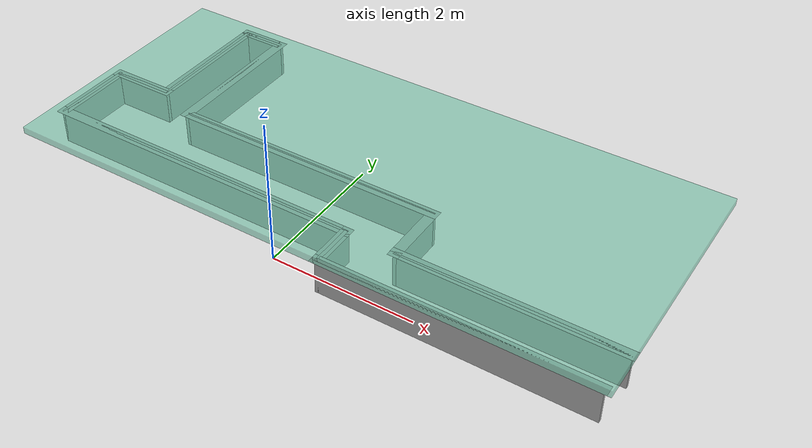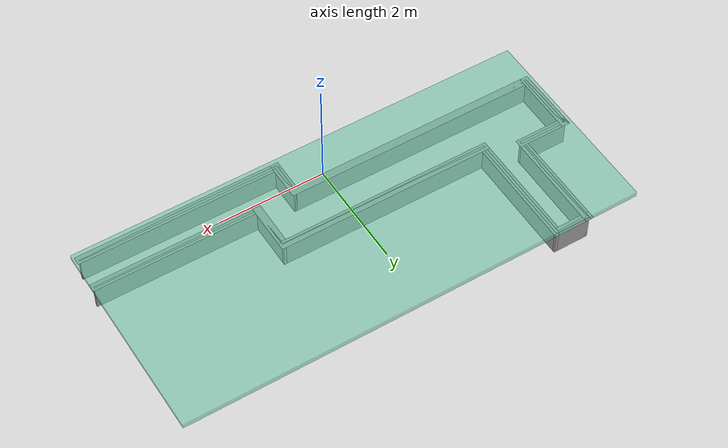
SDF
<?xml version='1.0'?>
<sdf version='1.7'>
  <model name='TubeWorld2'>
    <pose>0.316 1.602 0 0 -0 0</pose>
    <link name='Floor_1'>
      <collision name='Floor_1_Collision'>
        <geometry>
          <box>
            <size>8.4 3.7 0.1</size>
          </box>
        </geometry>
        <pose>0 0 0.05 0 -0 0</pose>
      </collision>
      <visual name='Floor_1_Visual'>
        <pose>0 0 0.05 0 -0 0</pose>
        <transparency>0.4</transparency>
        <geometry>
          <box>
            <size>8.4 3.7 0.1</size>
          </box>
        </geometry>
        <material>
          <script>
            <uri>file://media/materials/scripts/gazebo.material</uri>
            <name>Gazebo/Grey</name>
          </script>
          <ambient>0.435294 0.796078 0.67451 1</ambient>
        </material>
        <meta>
          <layer>1</layer>
        </meta>
      </visual>
      <pose>0 -0 0.5 0 -0 0</pose>
    </link>
    <link name='Wall_0'>
      <collision name='Wall_0_Collision'>
        <geometry>
          <box>
            <size>3 0.05 0.5</size>
          </box>
        </geometry>
        <pose>0 0 0.25 0 -0 0</pose>
      </collision>
      <visual name='Wall_0_Visual'>
        <pose>0 0 0.25 0 -0 0</pose>
        <geometry>
          <box>
            <size>3 0.05 0.5</size>
          </box>
        </geometry>
        <material>
          <script>
            <uri>file://media/materials/scripts/gazebo.material</uri>
            <name>Gazebo/Grey</name>
          </script>
          <ambient>1 1 1 1</ambient>
        </material>
        <meta>
          <layer>0</layer>
        </meta>
      </visual>
      <pose>2.65 -1.175 0 0 -0 3.14159</pose>
    </link>
    <link name='Wall_10'>
      <collision name='Wall_10_Collision'>
        <geometry>
          <box>
            <size>0.9 0.05 0.5</size>
          </box>
        </geometry>
        <pose>0 0 0.25 0 -0 0</pose>
      </collision>
      <visual name='Wall_10_Visual'>
        <pose>0 0 0.25 0 -0 0</pose>
        <geometry>
          <box>
            <size>0.9 0.05 0.5</size>
          </box>
        </geometry>
        <material>
          <script>
            <uri>file://media/materials/scripts/gazebo.material</uri>
            <name>Gazebo/Grey</name>
          </script>
          <ambient>1 1 1 1</ambient>
        </material>
        <meta>
          <layer>0</layer>
        </meta>
      </visual>
      <pose>-3.7 -0.075 0 0 -0 3.14159</pose>
    </link>
    <link name='Wall_11'>
      <collision name='Wall_11_Collision'>
        <geometry>
          <box>
            <size>1.15 0.05 0.5</size>
          </box>
        </geometry>
        <pose>0 0 0.25 0 -0 0</pose>
      </collision>
      <visual name='Wall_11_Visual'>
        <pose>0 0 0.25 0 -0 0</pose>
        <geometry>
          <box>
            <size>1.15 0.05 0.5</size>
          </box>
        </geometry>
        <material>
          <script>
            <uri>file://media/materials/scripts/gazebo.material</uri>
            <name>Gazebo/Grey</name>
          </script>
          <ambient>1 1 1 1</ambient>
        </material>
        <meta>
          <layer>0</layer>
        </meta>
      </visual>
      <pose>-4.125 -0.625 0 0 -0 -1.5708</pose>
    </link>
    <link name='Wall_12'>
      <collision name='Wall_12_Collision'>
        <geometry>
          <box>
            <size>4.65 0.05 0.5</size>
          </box>
        </geometry>
        <pose>0 0 0.25 0 -0 0</pose>
      </collision>
      <visual name='Wall_12_Visual'>
        <pose>0 0 0.25 0 -0 0</pose>
        <geometry>
          <box>
            <size>4.65 0.05 0.5</size>
          </box>
        </geometry>
        <material>
          <script>
            <uri>file://media/materials/scripts/gazebo.material</uri>
            <name>Gazebo/Grey</name>
          </script>
          <ambient>1 1 1 1</ambient>
        </material>
        <meta>
          <layer>0</layer>
        </meta>
      </visual>
      <pose>-1.825 -1.175 0 0 -0 0</pose>
    </link>
    <link name='Wall_13'>
      <collision name='Wall_13_Collision'>
        <geometry>
          <box>
            <size>0.65 0.05 0.5</size>
          </box>
        </geometry>
        <pose>0 0 0.25 0 -0 0</pose>
      </collision>
      <visual name='Wall_13_Visual'>
        <pose>0 0 0.25 0 -0 0</pose>
        <geometry>
          <box>
            <size>0.65 0.05 0.5</size>
          </box>
        </geometry>
        <material>
          <script>
            <uri>file://media/materials/scripts/gazebo.material</uri>
            <name>Gazebo/Grey</name>
          </script>
          <ambient>1 1 1 1</ambient>
        </material>
        <meta>
          <layer>0</layer>
        </meta>
      </visual>
      <pose>0.475 -1.475 0 0 -0 -1.5708</pose>
    </link>
    <link name='Wall_14'>
      <collision name='Wall_14_Collision'>
        <geometry>
          <box>
            <size>3.65 0.05 0.5</size>
          </box>
        </geometry>
        <pose>0 0 0.25 0 -0 0</pose>
      </collision>
      <visual name='Wall_14_Visual'>
        <pose>0 0 0.25 0 -0 0</pose>
        <geometry>
          <box>
            <size>3.65 0.05 0.5</size>
          </box>
        </geometry>
        <material>
          <script>
            <uri>file://media/materials/scripts/gazebo.material</uri>
            <name>Gazebo/Grey</name>
          </script>
          <ambient>1 1 1 1</ambient>
        </material>
        <meta>
          <layer>0</layer>
        </meta>
      </visual>
      <pose>2.275 -1.775 0 0 -0 0</pose>
    </link>
    <link name='Wall_27'>
      <collision name='Wall_27_Collision'>
        <geometry>
          <box>
            <size>3.1 0.15 0</size>
          </box>
        </geometry>
        <pose>0 0 0 0 -0 0</pose>
      </collision>
      <visual name='Wall_27_Visual'>
        <pose>0 0 0 0 -0 0</pose>
        <geometry>
          <box>
            <size>3.1 0.15 0</size>
          </box>
        </geometry>
        <material>
          <script>
            <uri>file://media/materials/scripts/gazebo.material</uri>
            <name>Gazebo/Grey</name>
          </script>
          <ambient>1 1 1 1</ambient>
        </material>
        <meta>
          <layer>1</layer>
        </meta>
      </visual>
      <pose>2.65 -1.175 0.5 0 -0 3.14159</pose>
    </link>
    <link name='Wall_28'>
      <collision name='Wall_28_Collision'>
        <geometry>
          <box>
            <size>1 0.15 0</size>
          </box>
        </geometry>
        <pose>0 0 0 0 -0 0</pose>
      </collision>
      <visual name='Wall_28_Visual'>
        <pose>0 0 0 0 -0 0</pose>
        <geometry>
          <box>
            <size>1 0.15 0</size>
          </box>
        </geometry>
        <material>
          <script>
            <uri>file://media/materials/scripts/gazebo.material</uri>
            <name>Gazebo/Grey</name>
          </script>
          <ambient>1 1 1 1</ambient>
        </material>
        <meta>
          <layer>1</layer>
        </meta>
      </visual>
      <pose>1.175 -0.75 0.5 0 -0 1.5708</pose>
    </link>
    <link name='Wall_29'>
      <collision name='Wall_29_Collision'>
        <geometry>
          <box>
            <size>4 0.15 0</size>
          </box>
        </geometry>
        <pose>0 0 0 0 -0 0</pose>
      </collision>
      <visual name='Wall_29_Visual'>
        <pose>0 0 0 0 -0 0</pose>
        <geometry>
          <box>
            <size>4 0.15 0</size>
          </box>
        </geometry>
        <material>
          <script>
            <uri>file://media/materials/scripts/gazebo.material</uri>
            <name>Gazebo/Grey</name>
          </script>
          <ambient>1 1 1 1</ambient>
        </material>
        <meta>
          <layer>1</layer>
        </meta>
      </visual>
      <pose>-0.75 -0.325 0.5 0 -0 3.14159</pose>
    </link>
    <link name='Wall_30'>
      <collision name='Wall_30_Collision'>
        <geometry>
          <box>
            <size>2.25 0.15 0</size>
          </box>
        </geometry>
        <pose>0 0 0 0 -0 0</pose>
      </collision>
      <visual name='Wall_30_Visual'>
        <pose>0 0 0 0 -0 0</pose>
        <geometry>
          <box>
            <size>2.25 0.15 0</size>
          </box>
        </geometry>
        <material>
          <script>
            <uri>file://media/materials/scripts/gazebo.material</uri>
            <name>Gazebo/Grey</name>
          </script>
          <ambient>1 1 1 1</ambient>
        </material>
        <meta>
          <layer>1</layer>
        </meta>
      </visual>
      <pose>-2.675 0.725 0.5 0 -0 1.5708</pose>
    </link>
    <link name='Wall_31'>
      <collision name='Wall_31_Collision'>
        <geometry>
          <box>
            <size>0.75 0.15 0</size>
          </box>
        </geometry>
        <pose>0 0 0 0 -0 0</pose>
      </collision>
      <visual name='Wall_31_Visual'>
        <pose>0 0 0 0 -0 0</pose>
        <geometry>
          <box>
            <size>0.75 0.15 0</size>
          </box>
        </geometry>
        <material>
          <script>
            <uri>file://media/materials/scripts/gazebo.material</uri>
            <name>Gazebo/Grey</name>
          </script>
          <ambient>1 1 1 1</ambient>
        </material>
        <meta>
          <layer>1</layer>
        </meta>
      </visual>
      <pose>-2.975 1.775 0.5 0 -0 3.14159</pose>
    </link>
    <link name='Wall_32'>
      <collision name='Wall_32_Collision'>
        <geometry>
          <box>
            <size>2 0.15 0</size>
          </box>
        </geometry>
        <pose>0 0 0 0 -0 0</pose>
      </collision>
      <visual name='Wall_32_Visual'>
        <pose>0 0 0 0 -0 0</pose>
        <geometry>
          <box>
            <size>2 0.15 0</size>
          </box>
        </geometry>
        <material>
          <script>
            <uri>file://media/materials/scripts/gazebo.material</uri>
            <name>Gazebo/Grey</name>
          </script>
          <ambient>1 1 1 1</ambient>
        </material>
        <meta>
          <layer>1</layer>
        </meta>
      </visual>
      <pose>-3.275 0.85 0.5 0 -0 -1.5708</pose>
    </link>
    <link name='Wall_33'>
      <collision name='Wall_33_Collision'>
        <geometry>
          <box>
            <size>1 0.15 0</size>
          </box>
        </geometry>
        <pose>0 0 0 0 -0 0</pose>
      </collision>
      <visual name='Wall_33_Visual'>
        <pose>0 0 0 0 -0 0</pose>
        <geometry>
          <box>
            <size>1 0.15 0</size>
          </box>
        </geometry>
        <material>
          <script>
            <uri>file://media/materials/scripts/gazebo.material</uri>
            <name>Gazebo/Grey</name>
          </script>
          <ambient>1 1 1 1</ambient>
        </material>
        <meta>
          <layer>1</layer>
        </meta>
      </visual>
      <pose>-3.7 -0.075 0.5 0 -0 3.14159</pose>
    </link>
    <link name='Wall_34'>
      <collision name='Wall_34_Collision'>
        <geometry>
          <box>
            <size>1.25 0.15 0</size>
          </box>
        </geometry>
        <pose>0 0 0 0 -0 0</pose>
      </collision>
      <visual name='Wall_34_Visual'>
        <pose>0 0 0 0 -0 0</pose>
        <geometry>
          <box>
            <size>1.25 0.15 0</size>
          </box>
        </geometry>
        <material>
          <script>
            <uri>file://media/materials/scripts/gazebo.material</uri>
            <name>Gazebo/Grey</name>
          </script>
          <ambient>1 1 1 1</ambient>
        </material>
        <meta>
          <layer>1</layer>
        </meta>
      </visual>
      <pose>-4.125 -0.625 0.5 0 -0 -1.5708</pose>
    </link>
    <link name='Wall_35'>
      <collision name='Wall_35_Collision'>
        <geometry>
          <box>
            <size>4.75 0.15 0</size>
          </box>
        </geometry>
        <pose>0 0 0 0 -0 0</pose>
      </collision>
      <visual name='Wall_35_Visual'>
        <pose>0 0 0 0 -0 0</pose>
        <geometry>
          <box>
            <size>4.75 0.15 0</size>
          </box>
        </geometry>
        <material>
          <script>
            <uri>file://media/materials/scripts/gazebo.material</uri>
            <name>Gazebo/Grey</name>
          </script>
          <ambient>1 1 1 1</ambient>
        </material>
        <meta>
          <layer>1</layer>
        </meta>
      </visual>
      <pose>-1.825 -1.175 0.5 0 -0 0</pose>
    </link>
    <link name='Wall_36'>
      <collision name='Wall_36_Collision'>
        <geometry>
          <box>
            <size>0.75 0.15 0</size>
          </box>
        </geometry>
        <pose>0 0 0 0 -0 0</pose>
      </collision>
      <visual name='Wall_36_Visual'>
        <pose>0 0 0 0 -0 0</pose>
        <geometry>
          <box>
            <size>0.75 0.15 0</size>
          </box>
        </geometry>
        <material>
          <script>
            <uri>file://media/materials/scripts/gazebo.material</uri>
            <name>Gazebo/Grey</name>
          </script>
          <ambient>1 1 1 1</ambient>
        </material>
        <meta>
          <layer>1</layer>
        </meta>
      </visual>
      <pose>0.475 -1.475 0.5 0 -0 -1.5708</pose>
    </link>
    <link name='Wall_37'>
      <collision name='Wall_37_Collision'>
        <geometry>
          <box>
            <size>3.75 0.15 0</size>
          </box>
        </geometry>
        <pose>0 0 0 0 -0 0</pose>
      </collision>
      <visual name='Wall_37_Visual'>
        <pose>0 0 0 0 -0 0</pose>
        <geometry>
          <box>
            <size>3.75 0.15 0</size>
          </box>
        </geometry>
        <material>
          <script>
            <uri>file://media/materials/scripts/gazebo.material</uri>
            <name>Gazebo/Grey</name>
          </script>
          <ambient>1 1 1 1</ambient>
        </material>
        <meta>
          <layer>1</layer>
        </meta>
      </visual>
      <pose>2.275 -1.775 0.5 0 -0 0</pose>
    </link>
    <link name='Wall_5'>
      <collision name='Wall_5_Collision'>
        <geometry>
          <box>
            <size>0.9 0.05 0.5</size>
          </box>
        </geometry>
        <pose>0 0 0.25 0 -0 0</pose>
      </collision>
      <visual name='Wall_5_Visual'>
        <pose>0 0 0.25 0 -0 0</pose>
        <geometry>
          <box>
            <size>0.9 0.05 0.5</size>
          </box>
        </geometry>
        <material>
          <script>
            <uri>file://media/materials/scripts/gazebo.material</uri>
            <name>Gazebo/Grey</name>
          </script>
          <ambient>1 1 1 1</ambient>
        </material>
        <meta>
          <layer>0</layer>
        </meta>
      </visual>
      <pose>1.175 -0.75 0 0 -0 1.5708</pose>
    </link>
    <link name='Wall_6'>
      <collision name='Wall_6_Collision'>
        <geometry>
          <box>
            <size>3.9 0.05 0.5</size>
          </box>
        </geometry>
        <pose>0 0 0.25 0 -0 0</pose>
      </collision>
      <visual name='Wall_6_Visual'>
        <pose>0 0 0.25 0 -0 0</pose>
        <geometry>
          <box>
            <size>3.9 0.05 0.5</size>
          </box>
        </geometry>
        <material>
          <script>
            <uri>file://media/materials/scripts/gazebo.material</uri>
            <name>Gazebo/Grey</name>
          </script>
          <ambient>1 1 1 1</ambient>
        </material>
        <meta>
          <layer>0</layer>
        </meta>
      </visual>
      <pose>-0.75 -0.325 0 0 -0 3.14159</pose>
    </link>
    <link name='Wall_7'>
      <collision name='Wall_7_Collision'>
        <geometry>
          <box>
            <size>2.15 0.05 0.5</size>
          </box>
        </geometry>
        <pose>0 0 0.25 0 -0 0</pose>
      </collision>
      <visual name='Wall_7_Visual'>
        <pose>0 0 0.25 0 -0 0</pose>
        <geometry>
          <box>
            <size>2.15 0.05 0.5</size>
          </box>
        </geometry>
        <material>
          <script>
            <uri>file://media/materials/scripts/gazebo.material</uri>
            <name>Gazebo/Grey</name>
          </script>
          <ambient>1 1 1 1</ambient>
        </material>
        <meta>
          <layer>0</layer>
        </meta>
      </visual>
      <pose>-2.675 0.725 0 0 -0 1.5708</pose>
    </link>
    <link name='Wall_8'>
      <collision name='Wall_8_Collision'>
        <geometry>
          <box>
            <size>0.65 0.05 0.5</size>
          </box>
        </geometry>
        <pose>0 0 0.25 0 -0 0</pose>
      </collision>
      <visual name='Wall_8_Visual'>
        <pose>0 0 0.25 0 -0 0</pose>
        <geometry>
          <box>
            <size>0.65 0.05 0.5</size>
          </box>
        </geometry>
        <material>
          <script>
            <uri>file://media/materials/scripts/gazebo.material</uri>
            <name>Gazebo/Grey</name>
          </script>
          <ambient>1 1 1 1</ambient>
        </material>
        <meta>
          <layer>0</layer>
        </meta>
      </visual>
      <pose>-2.975 1.775 0 0 -0 3.14159</pose>
    </link>
    <link name='Wall_9'>
      <collision name='Wall_9_Collision'>
        <geometry>
          <box>
            <size>1.9 0.05 0.5</size>
          </box>
        </geometry>
        <pose>0 0 0.25 0 -0 0</pose>
      </collision>
      <visual name='Wall_9_Visual'>
        <pose>0 0 0.25 0 -0 0</pose>
        <geometry>
          <box>
            <size>1.9 0.05 0.5</size>
          </box>
        </geometry>
        <material>
          <script>
            <uri>file://media/materials/scripts/gazebo.material</uri>
            <name>Gazebo/Grey</name>
          </script>
          <ambient>1 1 1 1</ambient>
        </material>
        <meta>
          <layer>0</layer>
        </meta>
      </visual>
      <pose>-3.275 0.85 0 0 -0 -1.5708</pose>
    </link>
    <static>1</static>
  </model>
</sdf>
